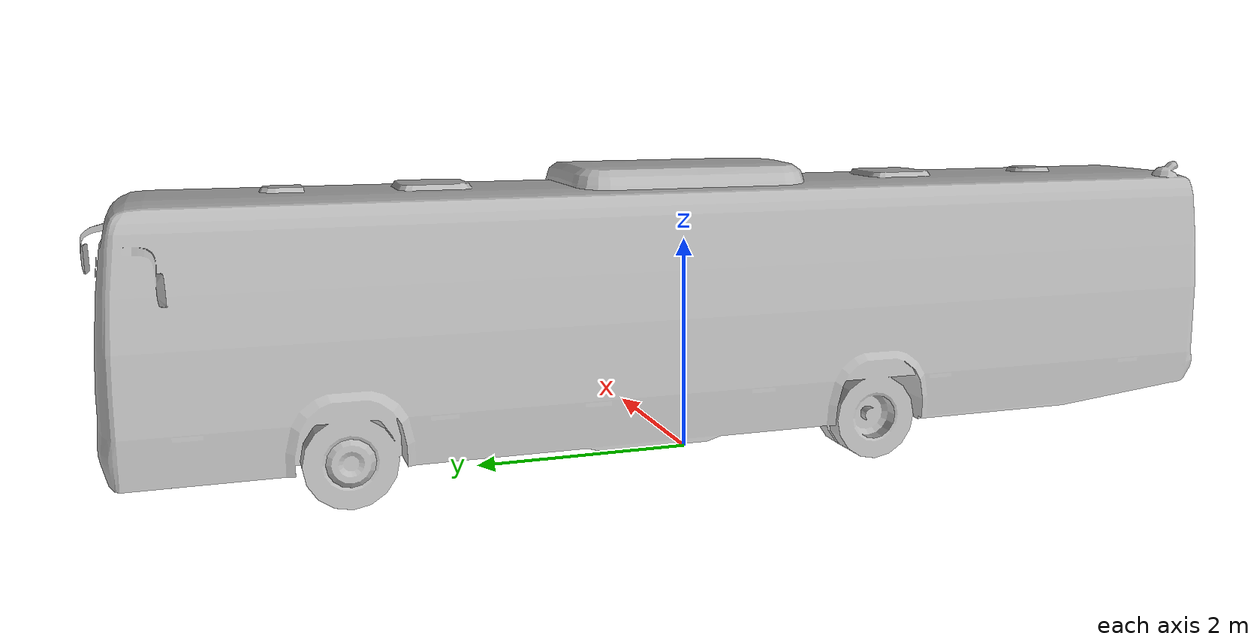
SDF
<?xml version="1.0"?>
<sdf version="1.9">
  <model name="bus">
    <static>true</static>
    <link name="link">
      <visual name="visual">
        <!-- Source OBJ is Y-up; rotate it into Gazebo's Z-up frame. -->
        <pose>0 0 0 1.57079632679 0 0</pose>
        <geometry>
          <mesh>
            <uri>model://cmra_models/bus/bus.obj</uri>
            <scale>0.08 0.08 0.08</scale>
          </mesh>
        </geometry>
      </visual>
    </link>
  </model>
</sdf>
